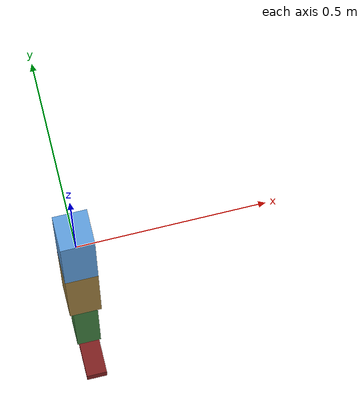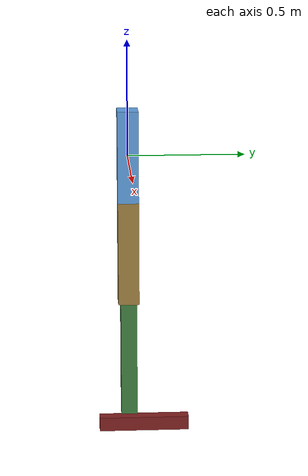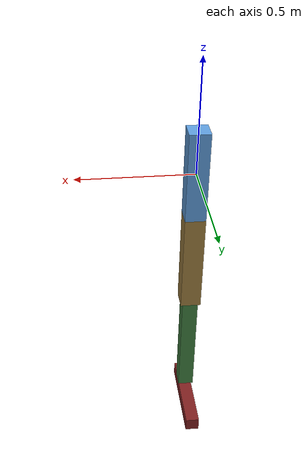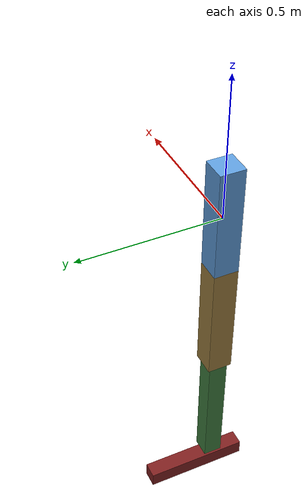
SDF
<?xml version="1.0"?>
<sdf version="1.8">
  <model name="hopper_bare">
    <link name="anchor">
      <inertial><mass>0.5</mass>
        <inertia><ixx>0.001</ixx><iyy>0.001</iyy><izz>0.001</izz></inertia></inertial>
    </link>

    <joint name="root_fwd" type="prismatic">
      <pose relative_to="anchor">0 0 0 0 0 0</pose>
      <parent>anchor</parent><child>d1</child>
      <axis><xyz>0 1 0</xyz><dynamics><damping>0.9</damping></dynamics></axis>
    </joint>
    <link name="d1">
      <pose relative_to="root_fwd">0 0 0 0 0 0</pose>
      <inertial><mass>1.0</mass>
        <inertia><ixx>1e-4</ixx><iyy>1e-4</iyy><izz>1e-4</izz></inertia></inertial>
    </link>

    <joint name="root_up" type="prismatic">
      <pose relative_to="d1">0 0 0 0 0 0</pose>
      <parent>d1</parent><child>d2</child>
      <axis><xyz>0 0 1</xyz><dynamics><damping>0.9</damping></dynamics></axis>
    </joint>
    <link name="d2">
      <pose relative_to="root_up">0 0 0 0 0 0</pose>
      <inertial><mass>1.0</mass>
        <inertia><ixx>1e-4</ixx><iyy>1e-4</iyy><izz>1e-4</izz></inertia></inertial>
    </link>

    <joint name="root_pitch" type="revolute">
      <pose relative_to="d2">0 0 0 0 0 0</pose>
      <parent>d2</parent><child>torso</child>
      <axis><xyz>1 0 0</xyz><dynamics><damping>1.5</damping></dynamics></axis>
    </joint>

    <!-- torso: 0.4 long, centered on the root -->
    <link name="torso">
      <pose relative_to="root_pitch">0 0 0 0 0 0</pose>
      <inertial><mass>3.53</mass>
        <inertia><ixx>1.05</ixx><iyy>1.05</iyy><izz>0.0045</izz></inertia></inertial>
      <collision name="torso_collision">
        <geometry><box><size>0.09 0.09 0.4</size></box></geometry></collision>
      <visual name="torso_visual">
        <geometry><box><size>0.09 0.09 0.4</size></box></geometry>
        <material><ambient>0.375 0.625 0.875 1</ambient><diffuse>0.375 0.625 0.875 1</diffuse></material></visual>
    </link>

    <joint name="thigh_joint" type="revolute">
      <pose relative_to="torso">0 0 -0.2 0 0 0</pose>
      <parent>torso</parent><child>thigh</child>
      <axis><xyz>1 0 0</xyz><limit><lower>-2.618</lower><upper>0.0</upper></limit><dynamics><damping>1.5</damping></dynamics></axis>
    </joint>

    <!-- thigh: 0.45 long, hangs below its joint -->
    <link name="thigh">
      <pose relative_to="thigh_joint">0 0 0 0 0 0</pose>
      <inertial><pose>0 0 -0.225 0 0 0</pose><mass>3.93</mass>
        <inertia><ixx>1.07</ixx><iyy>1.07</iyy><izz>0.005</izz></inertia></inertial>
      <collision name="thigh_collision">
        <pose>0 0 -0.225 0 0 0</pose>
        <geometry><box><size>0.09 0.09 0.45</size></box></geometry></collision>
      <visual name="thigh_visual">
        <pose>0 0 -0.225 0 0 0</pose>
        <geometry><box><size>0.09 0.09 0.45</size></box></geometry>
        <material><ambient>0.625 0.5 0.25 1</ambient><diffuse>0.625 0.5 0.25 1</diffuse></material></visual>
    </link>

    <joint name="leg_joint" type="revolute">
      <pose relative_to="thigh">0 0 -0.45 0 0 0</pose>
      <parent>thigh</parent><child>leg</child>
      <axis><xyz>1 0 0</xyz><limit><lower>-2.618</lower><upper>0.0</upper></limit><dynamics><damping>1.5</damping></dynamics></axis>
    </joint>

    <!-- leg: 0.5 long -->
    <link name="leg">
      <pose relative_to="leg_joint">0 0 0 0 0 0</pose>
      <inertial><pose>0 0 -0.25 0 0 0</pose><mass>2.71</mass>
        <inertia><ixx>1.06</ixx><iyy>1.06</iyy><izz>0.0022</izz></inertia></inertial>
      <collision name="leg_collision">
        <pose>0 0 -0.25 0 0 0</pose>
        <geometry><box><size>0.07 0.07 0.5</size></box></geometry></collision>
      <visual name="leg_visual">
        <pose>0 0 -0.25 0 0 0</pose>
        <geometry><box><size>0.07 0.07 0.5</size></box></geometry>
        <material><ambient>0.25 0.5 0.25 1</ambient><diffuse>0.25 0.5 0.25 1</diffuse></material></visual>
    </link>

    <joint name="foot_joint" type="revolute">
      <pose relative_to="leg">0 0 -0.5 0 0 0</pose>
      <parent>leg</parent><child>foot</child>
      <axis><xyz>1 0 0</xyz><limit><lower>-0.785</lower><upper>0.785</upper></limit><dynamics><damping>1.5</damping></dynamics></axis>
    </joint>

    <!-- foot: 0.39 long along +Y (forward), ankle a third from the heel -->
    <link name="foot">
      <pose relative_to="foot_joint">0 0 0 0 0 0</pose>
      <inertial><pose>0 0.065 -0.05 0 0 0</pose><mass>5.32</mass>
        <inertia><ixx>1.07</ixx><iyy>1.0</iyy><izz>1.07</izz></inertia></inertial>
      <collision name="foot_collision">
        <pose>0 0.065 -0.05 0 0 0</pose>
        <geometry><box><size>0.06 0.39 0.06</size></box></geometry></collision>
      <visual name="foot_visual">
        <pose>0 0.065 -0.05 0 0 0</pose>
        <geometry><box><size>0.06 0.39 0.06</size></box></geometry>
        <material><ambient>0.5 0.125 0.125 1</ambient><diffuse>0.5 0.125 0.125 1</diffuse></material></visual>
    </link>
  </model>
</sdf>
